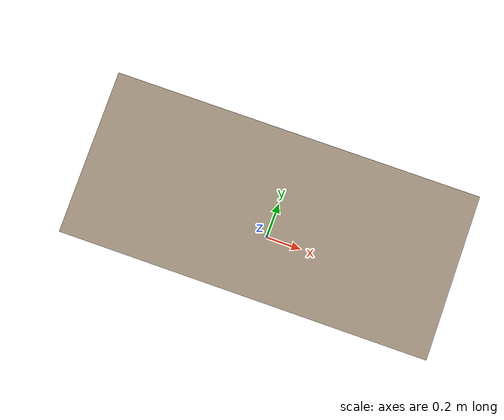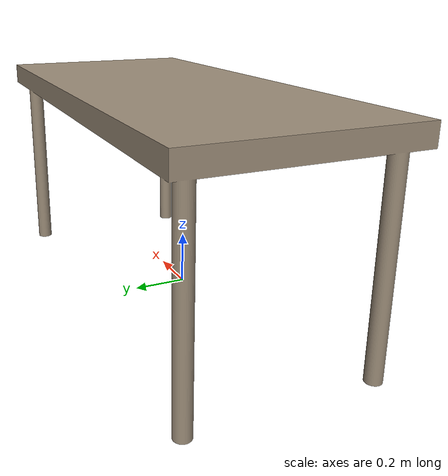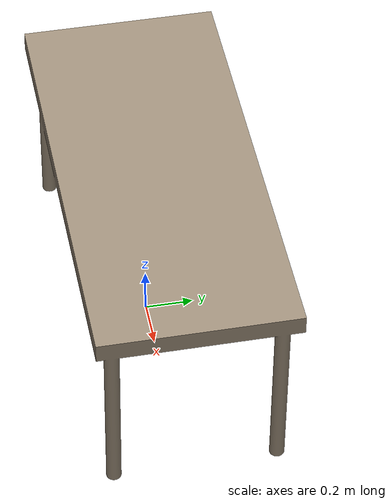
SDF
<?xml version="1.0"?>
<sdf version="1.9">
  <model name="room314_table_180cm">
    <static>true</static>
    <link name="room314_table_180cm_link">
      <visual name="room314_table_180cm_visual">
        <pose>-0.9 -0.35 0.72 0 0 0</pose>
        <geometry>
          <mesh>
            <uri>model://room314_table_180cm/meshes/table_180cm.stl</uri>
          </mesh>
        </geometry>
        <material>
          <ambient>0.62 0.56 0.48 1.0</ambient>
          <diffuse>0.62 0.56 0.48 1.0</diffuse>
          <specular>0.12 0.12 0.12 1.0</specular>
          <emissive>0.0 0.0 0.0 0.0</emissive>
        </material>
      </visual>
      <collision name="room314_table_180cm_collision">
        <pose>-0.9 -0.35 0.72 0 0 0</pose>
        <geometry>
          <mesh>
            <uri>model://room314_table_180cm/meshes/table_180cm.stl</uri>
          </mesh>
        </geometry>
      </collision>
    </link>
  </model>
</sdf>
